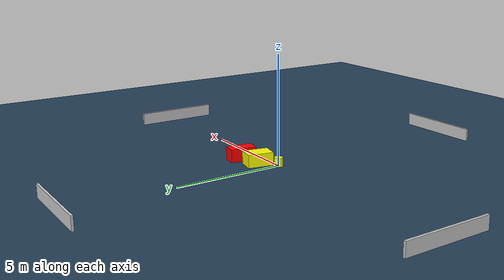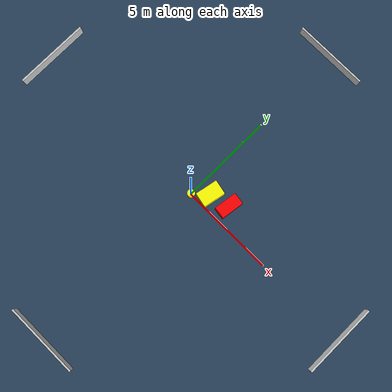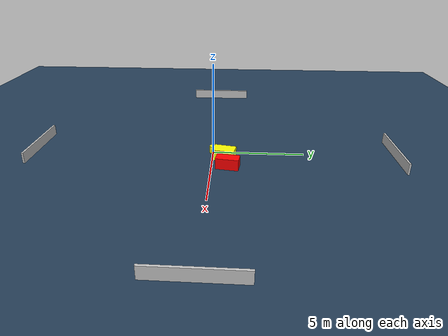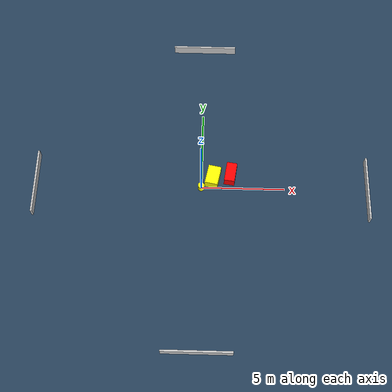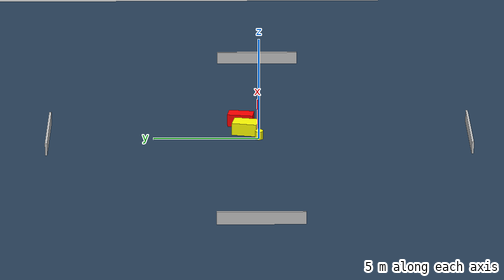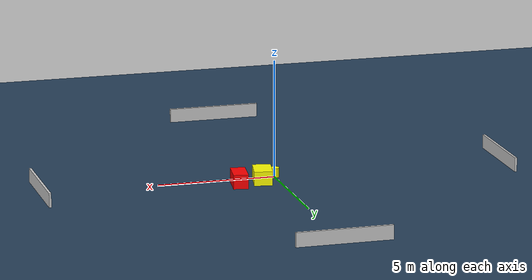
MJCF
<?xml version="1.0" ?>
<mujoco model="generated_environment">
  <option timestep="0.01" integrator="RK4" cone="elliptic"/>
  <default>
    <geom density="1"/>
  </default>
  <asset>
    <texture builtin="gradient" height="3072" name="skybox" rgb1="0.3 0.5 0.7" rgb2="0 0 0" type="skybox" width="512"/>
    <texture builtin="checker" height="300" name="groundplane" rgb1="0.2 0.3 0.4" rgb2="0.1 0.2 0.3" type="2d" width="300"/>
    <material name="groundplane" reflectance="0.2" texrepeat="5 5" texture="groundplane"/>
  </asset>
  <worldbody>
    <light dir="0 0 -1" directional="true" pos="0 0 1.5"/>
    <geom condim="3" friction="0.5 0.005 0.001" material="groundplane" name="floor" pos="0 0 0" size="0 0 0.05" type="plane"/>
    <body name="walls">
      <geom name="wall_1" condim="4" pos="-10.0 0.0 0.3" rgba="0.800000011920929 0.800000011920929 0.800000011920929 1.0" size="0.05 2.0 0.3" type="box"/>
      <geom name="wall_2" condim="4" pos="10.0 0.0 0.3" rgba="0.800000011920929 0.800000011920929 0.800000011920929 1.0" size="0.05 2.0 0.3" type="box"/>
      <geom name="wall_3" condim="4" pos="0.0 -10.0 0.3" rgba="0.800000011920929 0.800000011920929 0.800000011920929 1.0" size="2.0 0.05 0.3" type="box"/>
      <geom name="wall_4" condim="4" pos="0.0 10.0 0.3" rgba="0.800000011920929 0.800000011920929 0.800000011920929 1.0" size="2.0 0.05 0.3" type="box"/>
    </body>
    <body name="robot">
      <joint name="joint_x" type="slide" pos="0 0 0" axis="1 0 0"/>
      <joint name="joint_y" type="slide" pos="0 0 0" axis="0 1 0"/>
      <geom name="robot" type="cylinder" pos="0.0 0.0 0.2" size="0.2 0.2 0.0" mass="5.0" friction="1.0 0.005 0.0001" condim="4" rgba="1.0 1.0 0.0 1.0"/>
    </body>
    <body name="obstacle_1_movable">
      <geom name="obstacle_1_movable" condim="4" pos="0.7036936256320621 0.6385631709381298 0.3" euler="0 0 348.6579219897833" friction="0.0 0.005 0.001" rgba="1.0 1.0 0.0 1.0" size="0.3870617976813784 0.5960125786905758 0.3" type="box" mass="0.1"/>
      <joint type="free"/>
    </body>
    <body name="obstacle_2_static">
      <geom name="obstacle_2_static" condim="4" pos="1.763042985765099 0.8576279043680258 0.3" euler="0 0 171.89242675788157" friction="0.0 0.005 0.001" rgba="1.0 0.0 0.0 1.0" size="0.3151365282390528 0.6083132090419092 0.3" type="box"/>
    </body>
  </worldbody>
  <actuator>
    <motor name="actuator_x" joint="joint_x" gear="1" ctrlrange="-1 1"/>
    <motor name="actuator_y" joint="joint_y" gear="1" ctrlrange="-1 1"/>
  </actuator>
</mujoco>
